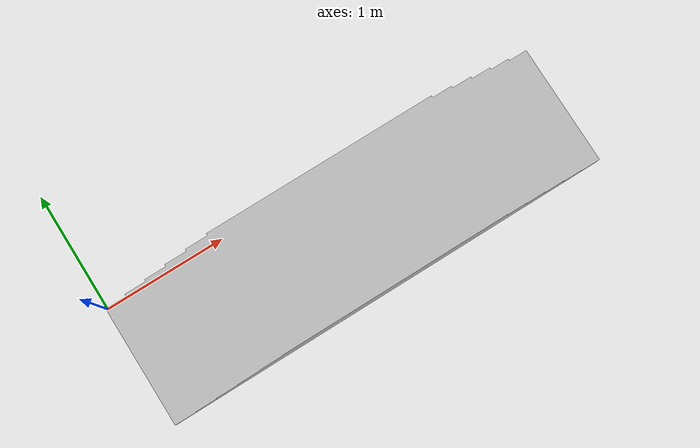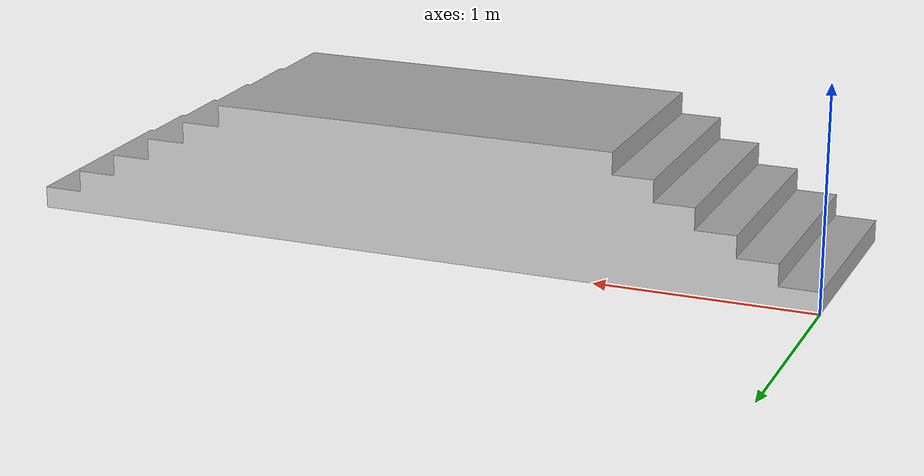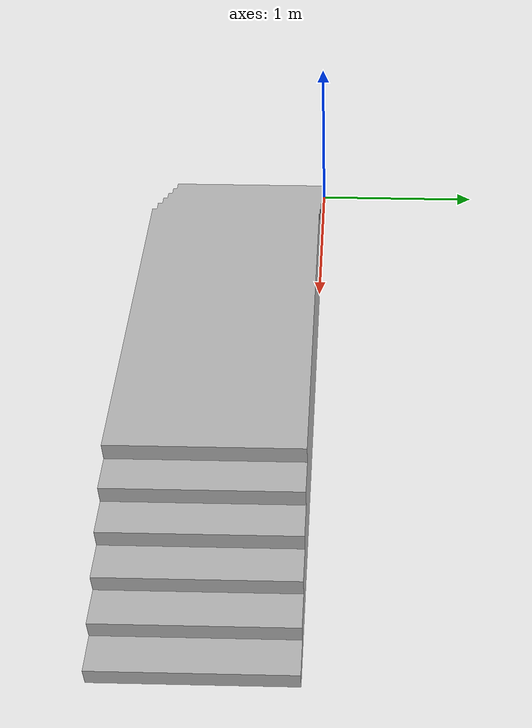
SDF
<sdf version='1.6'>
  <model name='step_type2.SLDPRT'>
    <link name='STEP_TYPE2'>
      <pose frame=''>0 0 0 0 -0 0</pose>
      <inertial>
        <pose frame=''>1.86 -0.5 0.26139 0 -0 0</pose>
        <mass>1677</mass>
        <inertia>
          <ixx>187.56</ixx>
          <ixy>-1.43295e-15</ixy>
          <ixz>3.13507e-13</ixz>
          <iyy>1306.94</iyy>
          <iyz>3.35896e-15</iyz>
          <izz>1398.88</izz>
        </inertia>
      </inertial>
      <collision name='STEP_TYPE2_collision'>
        <pose frame=''>0 0 0 1.5708 -0 0</pose>
        <geometry>
          <mesh>
            <scale>1 1 1</scale>
            <uri>model://STEP_TYPE2/meshes/STEP_TYPE2.STL</uri>
          </mesh>
        </geometry>
      </collision>
      <visual name='STEP_TYPE2_visual'>
        <pose frame=''>0 0 0 1.5708 -0 0</pose>
        <geometry>
          <mesh>
            <scale>1 1 1</scale>
            <uri>model://STEP_TYPE2/meshes/STEP_TYPE2.STL</uri>
          </mesh>
        </geometry>
      </visual>
    </link>
  </model>
</sdf>
